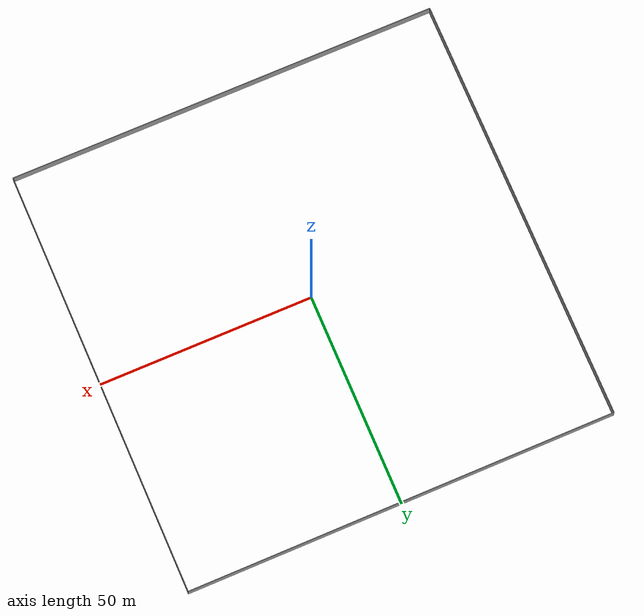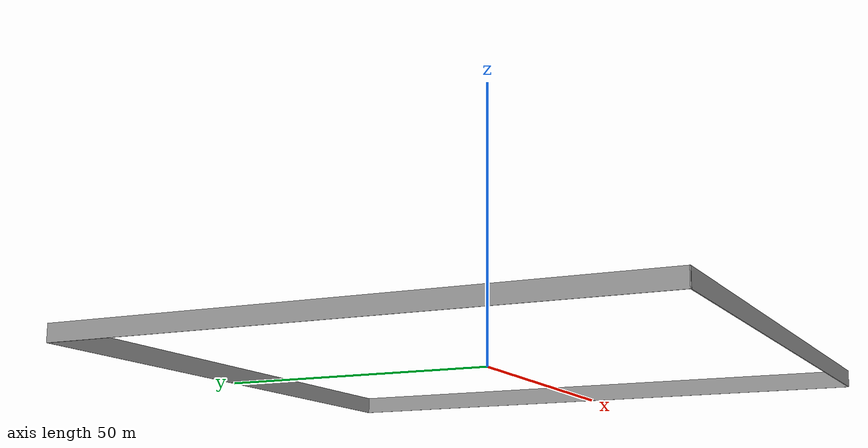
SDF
<?xml version='1.0'?>
<sdf version='1.7'>
  <model name='Fence100'>
    <pose>0 0 0 0 -0 0</pose>
    <link name='Wall_5'>
      <collision name='Wall_5_Collision'>
        <geometry>
          <box>
            <size>100.15 0.15 3</size>
          </box>
        </geometry>
        <pose>0 0 1.5 0 -0 0</pose>
      </collision>
      <visual name='Wall_5_Visual'>
        <pose>0 0 1.5 0 -0 0</pose>
        <geometry>
          <box>
            <size>100.15 0.15 3</size>
          </box>
        </geometry>
        <material>
          <script>
            <uri>file://media/materials/scripts/gazebo.material</uri>
            <name>Gazebo/Grey</name>
          </script>
          <ambient>1 1 1 1</ambient>
        </material>
        <meta>
          <layer>0</layer>
        </meta>
      </visual>
      <pose>-50 0 0 0 -0 1.5708</pose>
    </link>
    <link name='Wall_6'>
      <collision name='Wall_6_Collision'>
        <geometry>
          <box>
            <size>100.15 0.15 3</size>
          </box>
        </geometry>
        <pose>0 0 1.5 0 -0 0</pose>
      </collision>
      <visual name='Wall_6_Visual'>
        <pose>0 0 1.5 0 -0 0</pose>
        <geometry>
          <box>
            <size>100.15 0.15 3</size>
          </box>
        </geometry>
        <material>
          <script>
            <uri>file://media/materials/scripts/gazebo.material</uri>
            <name>Gazebo/Grey</name>
          </script>
          <ambient>1 1 1 1</ambient>
        </material>
        <meta>
          <layer>0</layer>
        </meta>
      </visual>
      <pose>0 50 0 0 -0 0</pose>
    </link>
    <link name='Wall_8'>
      <collision name='Wall_8_Collision'>
        <geometry>
          <box>
            <size>100.15 0.15 3</size>
          </box>
        </geometry>
        <pose>0 0 1.5 0 -0 0</pose>
      </collision>
      <visual name='Wall_8_Visual'>
        <pose>0 0 1.5 0 -0 0</pose>
        <geometry>
          <box>
            <size>100.15 0.15 3</size>
          </box>
        </geometry>
        <material>
          <script>
            <uri>file://media/materials/scripts/gazebo.material</uri>
            <name>Gazebo/Grey</name>
          </script>
          <ambient>1 1 1 1</ambient>
        </material>
        <meta>
          <layer>0</layer>
        </meta>
      </visual>
      <pose>50 0 0 0 -0 -1.5708</pose>
    </link>
    <link name='Wall_9'>
      <collision name='Wall_9_Collision'>
        <geometry>
          <box>
            <size>100.15 0.15 3</size>
          </box>
        </geometry>
        <pose>0 0 1.5 0 -0 0</pose>
      </collision>
      <visual name='Wall_9_Visual'>
        <pose>0 0 1.5 0 -0 0</pose>
        <geometry>
          <box>
            <size>100.15 0.15 3</size>
          </box>
        </geometry>
        <material>
          <script>
            <uri>file://media/materials/scripts/gazebo.material</uri>
            <name>Gazebo/Grey</name>
          </script>
          <ambient>1 1 1 1</ambient>
        </material>
        <meta>
          <layer>0</layer>
        </meta>
      </visual>
      <pose>0 -50 0 0 -0 3.14159</pose>
    </link>
    <static>1</static>
  </model>
</sdf>
